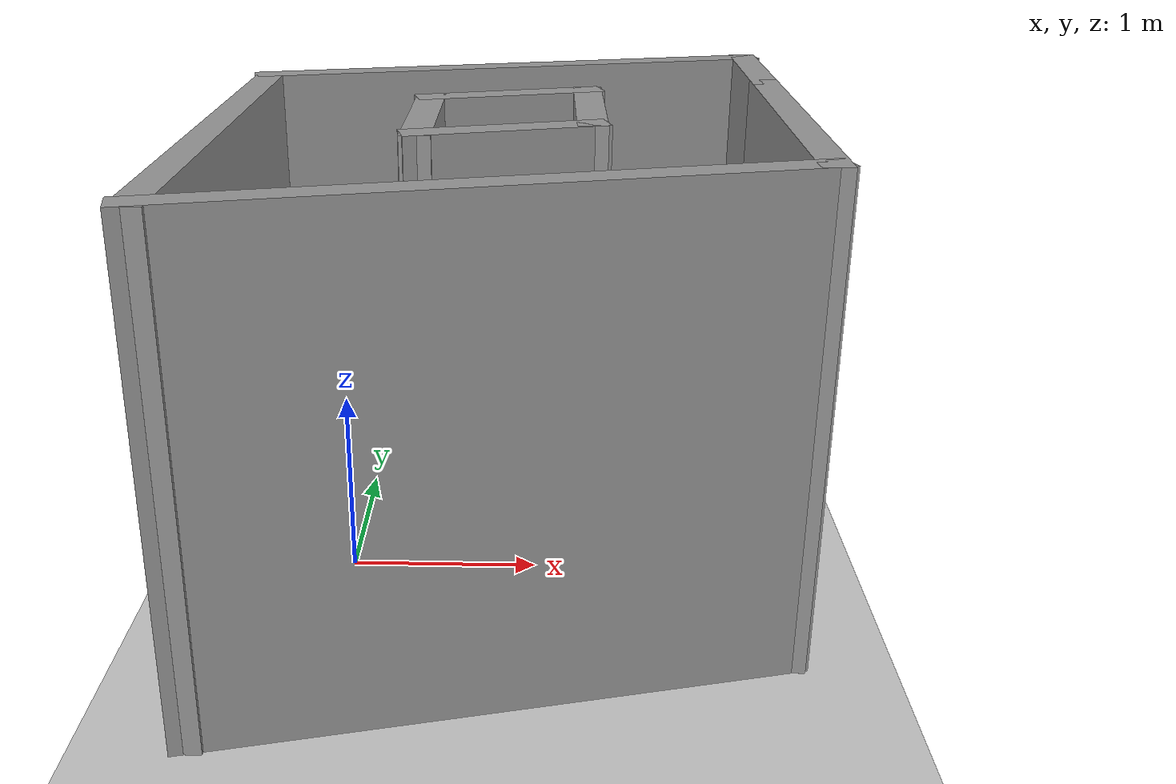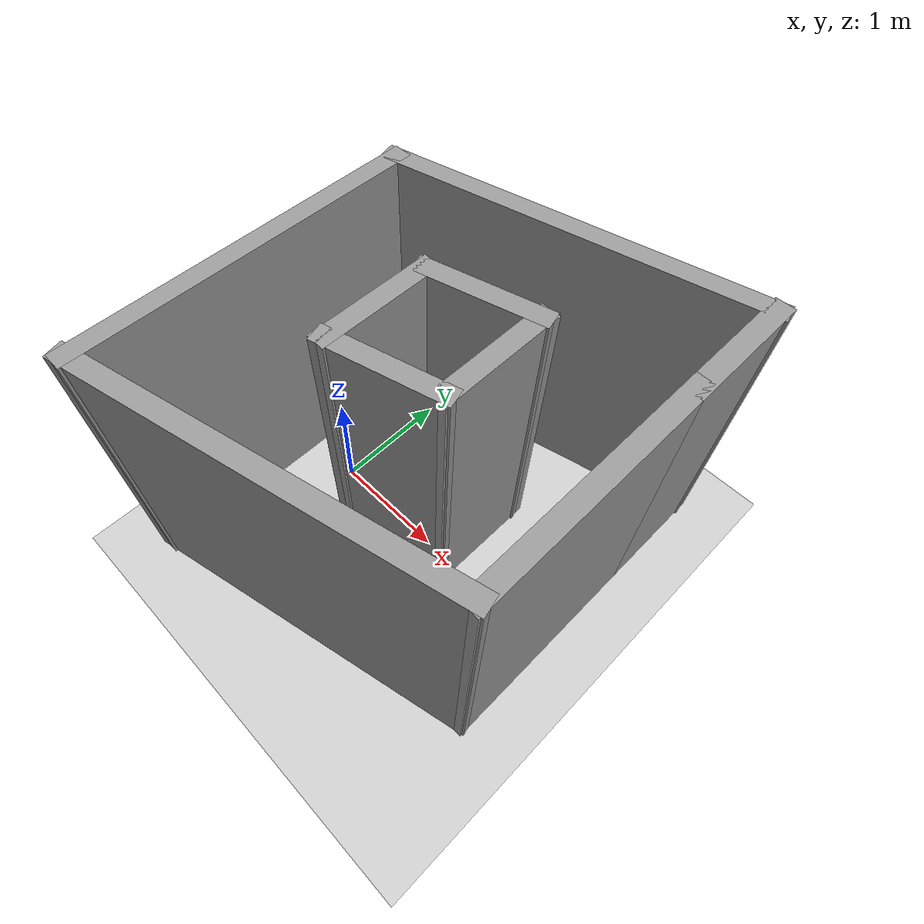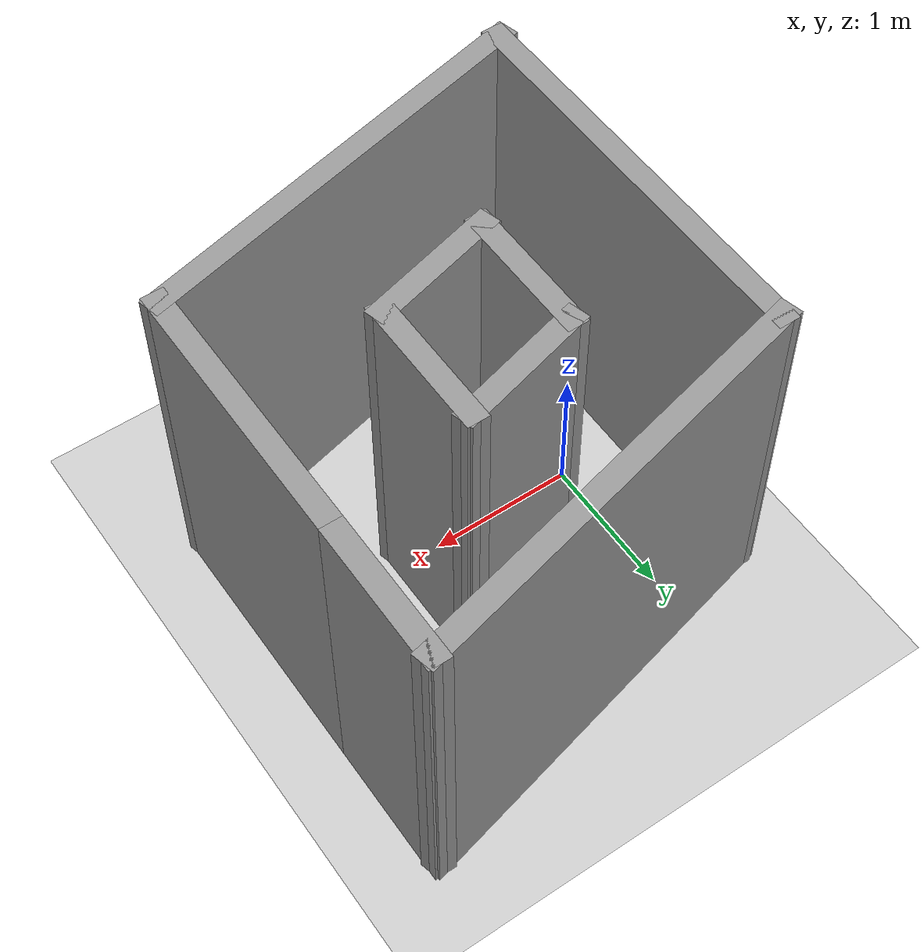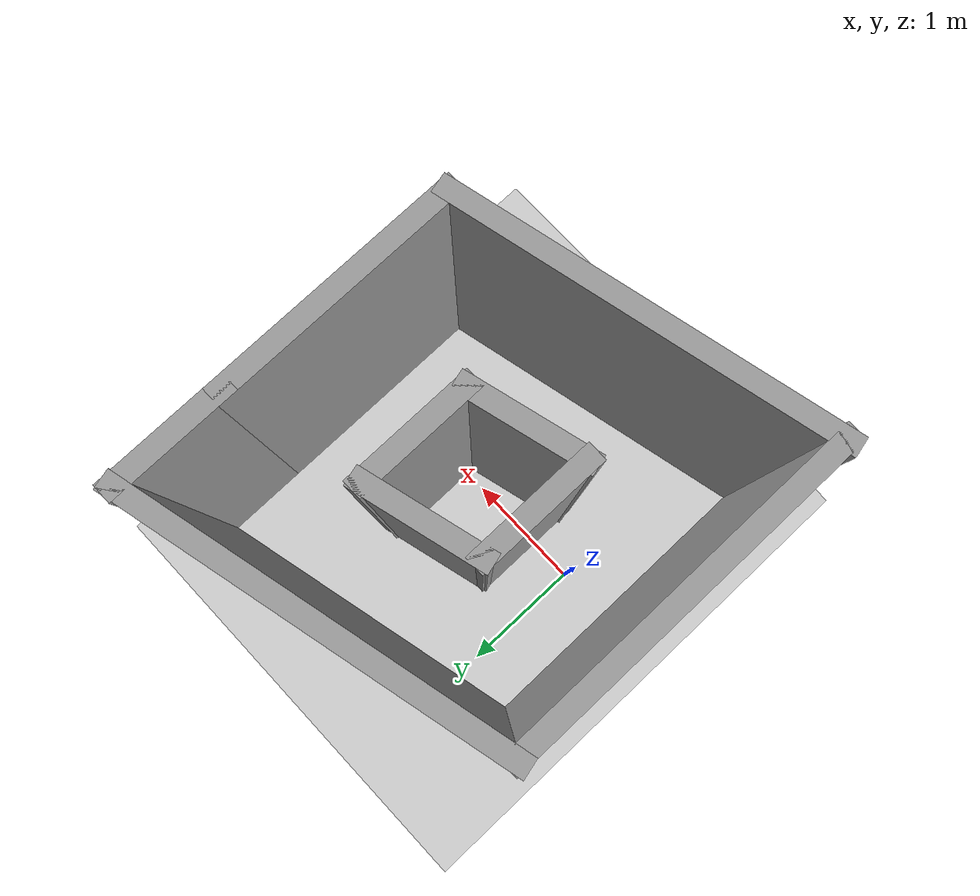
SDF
<sdf version="1.7">
 <world name="default">
  <scene><ambient>0.4 0.4 0.4 1</ambient><background>0.7 0.7 0.7 1</background><shadows>1</shadows></scene>
  <light name="sun" type="directional">
   <pose>0 0 10 0 -0 0</pose>
   <diffuse>0.8 0.8 0.8 1</diffuse>
   <specular>0.2 0.2 0.2 1</specular>
   <attenuation>
    <range>1000</range>
    <constant>0.9</constant>
    <linear>0.01</linear>
    <quadratic>0.001</quadratic>
   </attenuation>
   <direction>-0.5 0.1 -0.9</direction>
   <spot><inner_angle>0</inner_angle><outer_angle>0</outer_angle><falloff>0</falloff></spot>
  </light>
  <model name="ground_plane">
   <static>1</static>
   <link name="link">
    <collision name="collision">
     <geometry><plane><normal>0 0 1</normal><size>100 100</size></plane></geometry>
     <surface>
      <contact><collide_bitmask>65535</collide_bitmask></contact>
      <friction><ode><mu>100</mu><mu2>50</mu2></ode></friction>
     </surface>
    </collision>
    <visual name="visual">
     <cast_shadows>0</cast_shadows>
     <geometry><plane><normal>0 0 1</normal><size>100 100</size></plane></geometry>
     <material>
      <script><uri>file://media/materials/scripts/gazebo.material</uri><name>Gazebo/Grey</name></script>
     </material>
    </visual>
   </link>
  </model>
  <physics type="ode">
   <real_time_update_rate>1000</real_time_update_rate>
   <max_step_size>0.001</max_step_size>
   <real_time_factor>1</real_time_factor>
   <ode>
    <solver>
     <type>quick</type>
     <iters>150</iters>
     <precon_iters>0</precon_iters>
     <sor>1.4</sor>
     <use_dynamic_moi_rescaling>1</use_dynamic_moi_rescaling>
    </solver>
    <constraints>
     <cfm>1e-05</cfm>
     <erp>0.2</erp>
     <contact_max_correcting_vel>2000</contact_max_correcting_vel>
     <contact_surface_layer>0.01</contact_surface_layer>
    </constraints>
   </ode>
  </physics>
  <gravity>0 0 -9.8</gravity>
  <magnetic_field>6e-06 2.3e-05 -4.2e-05</magnetic_field>
  <atmosphere type="adiabatic"/>
  <spherical_coordinates>
   <surface_model>EARTH_WGS84</surface_model>
   <latitude_deg>0</latitude_deg>
   <longitude_deg>0</longitude_deg>
   <elevation>0</elevation>
   <heading_deg>0</heading_deg>
  </spherical_coordinates>
  <model name="world2">
   <pose>0.848105 0.14674 0 0 -0 0</pose>
   <link name="Wall_0">
    <collision name="Wall_0_Collision">
     <geometry><box><size>3.01661 0.15 2.5</size></box></geometry>
     <pose>0 0 1.25 0 -0 0</pose>
    </collision>
    <visual name="Wall_0_Visual">
     <pose>0 0 1.25 0 -0 0</pose>
     <geometry><box><size>3.01661 0.15 2.5</size></box></geometry>
     <material>
      <script><uri>file://media/materials/scripts/gazebo.material</uri><name>Gazebo/Grey</name></script>
      <ambient>1 1 1 1</ambient>
     </material>
     <meta><layer>0</layer></meta>
    </visual>
    <pose>0 -1.35 0 0 -0 0.235215</pose>
   </link>
   <link name="Wall_10">
    <collision name="Wall_10_Collision">
     <geometry><box><size>3.01661 0.15 2.5</size></box></geometry>
     <pose>0 0 1.25 0 -0 0</pose>
    </collision>
    <visual name="Wall_10_Visual">
     <pose>0 0 1.25 0 -0 0</pose>
     <geometry><box><size>3.01661 0.15 2.5</size></box></geometry>
     <material>
      <script><uri>file://media/materials/scripts/gazebo.material</uri><name>Gazebo/Grey</name></script>
      <ambient>1 1 1 1</ambient>
     </material>
     <meta><layer>0</layer></meta>
    </visual>
    <pose>0 1.35 0 0 -0 -2.90638</pose>
   </link>
   <link name="Wall_12">
    <collision name="Wall_12_Collision">
     <geometry><box><size>2.85 0.15 2.5</size></box></geometry>
     <pose>0 0 1.25 0 -0 0</pose>
    </collision>
    <visual name="Wall_12_Visual">
     <pose>0 0 1.25 0 -0 0</pose>
     <geometry><box><size>2.85 0.15 2.5</size></box></geometry>
     <material>
      <script><uri>file://media/materials/scripts/gazebo.material</uri><name>Gazebo/Grey</name></script>
      <ambient>1 1 1 1</ambient>
     </material>
     <meta><layer>0</layer></meta>
    </visual>
    <pose>-1.37644 -0.334035 0 0 -0 1.5708</pose>
   </link>
   <link name="Wall_14">
    <collision name="Wall_14_Collision">
     <geometry><box><size>1 0.15 2.5</size></box></geometry>
     <pose>0 0 1.25 0 -0 0</pose>
    </collision>
    <visual name="Wall_14_Visual">
     <pose>0 0 1.25 0 -0 0</pose>
     <geometry><box><size>1 0.15 2.5</size></box></geometry>
     <material>
      <script><uri>file://media/materials/scripts/gazebo.material</uri><name>Gazebo/Grey</name></script>
      <ambient>1 1 1 1</ambient>
     </material>
     <meta><layer>0</layer></meta>
    </visual>
    <pose>-0.001401 0.485886 0 0 -0 0.261799</pose>
   </link>
   <link name="Wall_17">
    <collision name="Wall_17_Collision">
     <geometry><box><size>1 0.15 2.5</size></box></geometry>
     <pose>0 0 1.25 0 -0 0</pose>
    </collision>
    <visual name="Wall_17_Visual">
     <pose>0 0 1.25 0 -0 0</pose>
     <geometry><box><size>1 0.15 2.5</size></box></geometry>
     <material>
      <script><uri>file://media/materials/scripts/gazebo.material</uri><name>Gazebo/Grey</name></script>
      <ambient>1 1 1 1</ambient>
     </material>
     <meta><layer>0</layer></meta>
    </visual>
    <pose>0.409118 0.170884 0 0 -0 -1.5708</pose>
   </link>
   <link name="Wall_18">
    <collision name="Wall_18_Collision">
     <geometry><box><size>1 0.15 2.5</size></box></geometry>
     <pose>0 0 1.25 0 -0 0</pose>
    </collision>
    <visual name="Wall_18_Visual">
     <pose>0 0 1.25 0 -0 0</pose>
     <geometry><box><size>1 0.15 2.5</size></box></geometry>
     <material>
      <script><uri>file://media/materials/scripts/gazebo.material</uri><name>Gazebo/Grey</name></script>
      <ambient>1 1 1 1</ambient>
     </material>
     <meta><layer>0</layer></meta>
    </visual>
    <pose>-0.001401 -0.364114 0 0 -0 -2.87979</pose>
   </link>
   <link name="Wall_19">
    <collision name="Wall_19_Collision">
     <geometry><box><size>1 0.15 2.5</size></box></geometry>
     <pose>0 0 1.25 0 -0 0</pose>
    </collision>
    <visual name="Wall_19_Visual">
     <pose>0 0 1.25 0 -0 0</pose>
     <geometry><box><size>1 0.15 2.5</size></box></geometry>
     <material>
      <script><uri>file://media/materials/scripts/gazebo.material</uri><name>Gazebo/Grey</name></script>
      <ambient>1 1 1 1</ambient>
     </material>
     <meta><layer>0</layer></meta>
    </visual>
    <pose>-0.411919 -0.049112 0 0 -0 1.5708</pose>
   </link>
   <link name="Wall_3">
    <collision name="Wall_3_Collision">
     <geometry><box><size>2 0.15 2.5</size></box></geometry>
     <pose>0 0 1.25 0 -0 0</pose>
    </collision>
    <visual name="Wall_3_Visual">
     <pose>0 0 1.25 0 -0 0</pose>
     <geometry><box><size>2 0.15 2.5</size></box></geometry>
     <material>
      <script><uri>file://media/materials/scripts/gazebo.material</uri><name>Gazebo/Grey</name></script>
      <ambient>1 1 1 1</ambient>
     </material>
     <meta><layer>0</layer></meta>
    </visual>
    <pose>1.39384 -0.090965 0 0 -0 1.5708</pose>
   </link>
   <link name="Wall_7">
    <collision name="Wall_7_Collision">
     <geometry><box><size>1 0.15 2.5</size></box></geometry>
     <pose>0 0 1.25 0 -0 0</pose>
    </collision>
    <visual name="Wall_7_Visual">
     <pose>0 0 1.25 0 -0 0</pose>
     <geometry><box><size>1 0.15 2.5</size></box></geometry>
     <material>
      <script><uri>file://media/materials/scripts/gazebo.material</uri><name>Gazebo/Grey</name></script>
      <ambient>1 1 1 1</ambient>
     </material>
     <meta><layer>0</layer></meta>
    </visual>
    <pose>1.39384 1.25903 0 0 -0 1.5708</pose>
   </link>
   <static>1</static>
  </model>
 </world>
</sdf>
